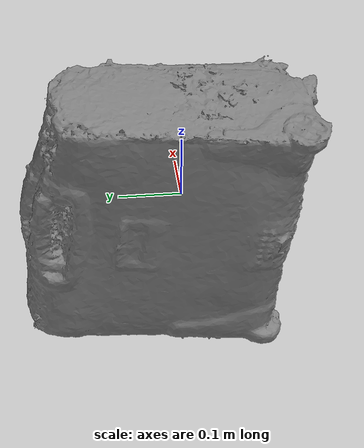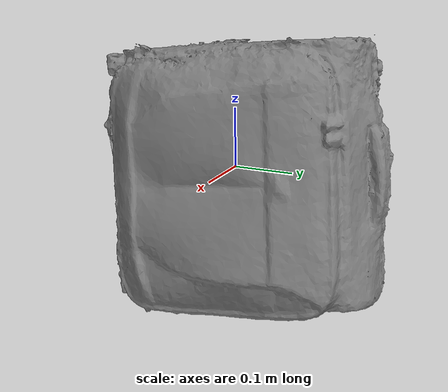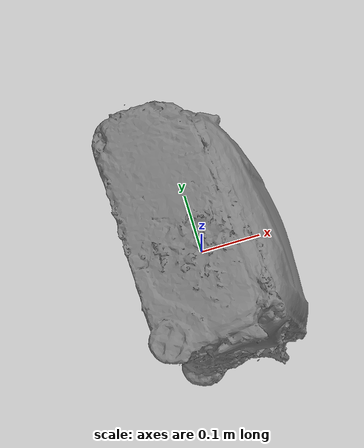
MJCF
<?xml version="1.0"?>
<mujoco model="suitcase">
  <!-- Assets -->
  <asset>
    <mesh name="suitcase_mesh" file="/home/elijah/Documents/projects/hdmi/active-adaptation/active_adaptation/assets_mjcf/objects/suitcase/suitcase.obj"/>
  </asset>

  <!-- World body -->
  <worldbody>
    <body name="suitcase_body">
      <freejoint name="suitcase_root"/>
      <inertial mass="2.0" pos="0 0 0" diaginertia="0.1 0.1 0.1"/>

      <!-- Visual geometry -->
      <geom name="suitcase_visual"
            type="mesh"
            mesh="suitcase_mesh"
            contype="0"
            conaffinity="0"/>

      <!-- Collision geometry -->
      <geom name="suitcase_collision"
            type="mesh"
            mesh="suitcase_mesh"
            rgba="0.4 0.3 0.2 0.5"/>
    </body>
  </worldbody>

</mujoco>
